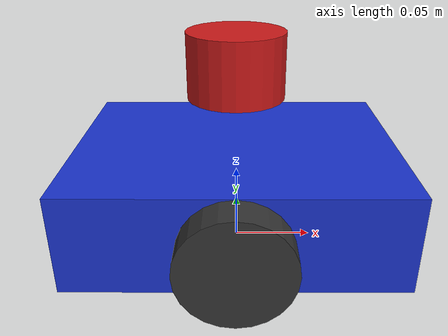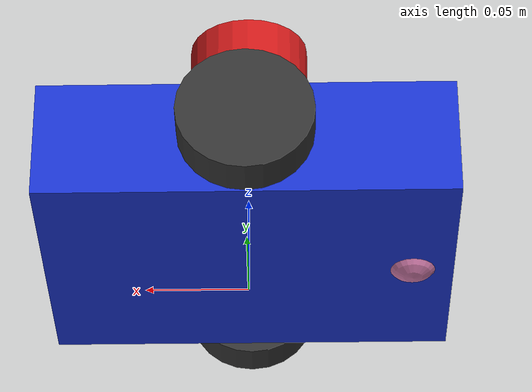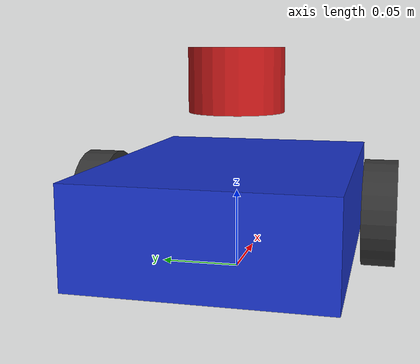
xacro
<?xml version="1.0"?>
<robot name="amr" xmlns:xacro="http://www.ros.org/wiki/xacro">

  <xacro:include filename="$(find amr_description)/urdf/wheel.xacro"/>
  <xacro:include filename="$(find amr_description)/urdf/sensors.xacro"/>

  <link name="base_footprint"/>

  <link name="base_link">
    <visual>
      <geometry><box size="0.20 0.15 0.06"/></geometry>
      <material name="blue"><color rgba="0.1 0.2 0.8 1"/></material>
    </visual>
    <collision>
      <geometry><box size="0.20 0.15 0.06"/></geometry>
    </collision>
    <inertial>
      <mass value="0.6"/>
      <inertia ixx="0.001" ixy="0" ixz="0" iyy="0.002" iyz="0" izz="0.002"/>
    </inertial>
  </link>

  <joint name="base_footprint_joint" type="fixed">
    <parent link="base_footprint"/>
    <child link="base_link"/>
    <origin xyz="0 0 0.04" rpy="0 0 0"/>
  </joint>

  <xacro:wheel prefix="left"  x_pos="0" y_pos="0.09"/>
  <xacro:wheel prefix="right" x_pos="0" y_pos="-0.09"/>

  <link name="caster_wheel">
    <visual><geometry><sphere radius="0.015"/></geometry></visual>
    <collision><geometry><sphere radius="0.015"/></geometry></collision>
    <inertial>
      <mass value="0.02"/>
      <inertia ixx="0.000005" ixy="0" ixz="0" iyy="0.000005" iyz="0" izz="0.000005"/>
    </inertial>
  </link>

  <joint name="caster_joint" type="fixed">
    <parent link="base_link"/>
    <child link="caster_wheel"/>
    <origin xyz="-0.08 0 -0.02" rpy="0 0 0"/>
  </joint>

  <gazebo>
    <plugin filename="gz-sim-diff-drive-system" name="gz::sim::systems::DiffDrive">
      <left_joint>left_wheel_joint</left_joint>
      <right_joint>right_wheel_joint</right_joint>
      <wheel_separation>0.18</wheel_separation>
      <wheel_radius>0.0325</wheel_radius>
      <odom_publish_frequency>30</odom_publish_frequency>
      <topic>cmd_vel</topic>
      <odom_topic>odom</odom_topic>
      <tf_topic>tf</tf_topic>
      <frame_id>odom</frame_id>
      <child_frame_id>base_footprint</child_frame_id>
    </plugin>
    <plugin filename="gz-sim-joint-state-publisher-system" name="gz::sim::systems::JointStatePublisher"/>
  </gazebo>

</robot>

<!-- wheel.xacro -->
<robot xmlns:xacro="http://www.ros.org/wiki/xacro">
  <xacro:macro name="wheel" params="prefix x_pos y_pos">
    <link name="${prefix}_wheel">
      <visual>
        <origin xyz="0 0 0" rpy="1.5708 0 0"/>
        <geometry><cylinder radius="0.0325" length="0.02"/></geometry>
        <material name="dark_grey"><color rgba="0.2 0.2 0.2 1"/></material>
      </visual>
      <collision>
        <origin xyz="0 0 0" rpy="1.5708 0 0"/>
        <geometry><cylinder radius="0.0325" length="0.02"/></geometry>
      </collision>
      <inertial>
        <mass value="0.05"/>
        <inertia ixx="0.00002" ixy="0" ixz="0" iyy="0.00002" iyz="0" izz="0.00003"/>
      </inertial>
    </link>

    <joint name="${prefix}_wheel_joint" type="continuous">
      <parent link="base_link"/>
      <child link="${prefix}_wheel"/>
      <origin xyz="${x_pos} ${y_pos} 0" rpy="0 0 0"/>
      <axis xyz="0 1 0"/>
    </joint>
  </xacro:macro>
</robot>

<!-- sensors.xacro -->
<robot xmlns:xacro="http://www.ros.org/wiki/xacro">

  <!-- LIDAR (models the YDLidar X2's FOV/range for sim purposes) -->
  <link name="laser_frame">
    <visual>
      <geometry><cylinder radius="0.03" length="0.04"/></geometry>
      <material name="red"><color rgba="0.8 0.1 0.1 1"/></material>
    </visual>
    <collision>
      <geometry><cylinder radius="0.03" length="0.04"/></geometry>
    </collision>
    <inertial>
      <mass value="0.05"/>
      <inertia ixx="0.00001" ixy="0" ixz="0" iyy="0.00001" iyz="0" izz="0.00001"/>
    </inertial>
  </link>

  <joint name="lidar_joint" type="fixed">
    <parent link="base_link"/>
    <child link="laser_frame"/>
    <origin xyz="0 0 0.08" rpy="0 0 0"/>
  </joint>

  <gazebo reference="lidar_joint">
    <preserveFixedJoint>true</preserveFixedJoint>
    <disableFixedJointLumping>true</disableFixedJointLumping>
  </gazebo>

  <gazebo reference="laser_frame">
    <sensor name="lidar" type="gpu_lidar">
      <pose>0 0 0 0 0 0</pose>
      <topic>scan</topic>
      <update_rate>7</update_rate>
      <lidar>
        <scan>
          <horizontal>
            <samples>360</samples>
            <resolution>1</resolution>
            <min_angle>-3.14159</min_angle>
            <max_angle>3.14159</max_angle>
          </horizontal>
        </scan>
        <range>
          <min>0.12</min>
          <max>8.0</max>
          <resolution>0.01</resolution>
        </range>
      </lidar>
      <always_on>true</always_on>
      <visualize>true</visualize>
    </sensor>
  </gazebo>

  <!-- MPU6050 IMU -->
  <link name="imu_link">
    <inertial>
      <mass value="0.01"/>
      <inertia ixx="0.000001" ixy="0" ixz="0" iyy="0.000001" iyz="0" izz="0.000001"/>
    </inertial>
  </link>

  <joint name="imu_joint" type="fixed">
    <parent link="base_link"/>
    <child link="imu_link"/>
    <origin xyz="0 0 0.02" rpy="0 0 0"/>
  </joint>

  <gazebo reference="imu_joint">
    <preserveFixedJoint>true</preserveFixedJoint>
    <disableFixedJointLumping>true</disableFixedJointLumping>
  </gazebo>

  <gazebo reference="imu_link">
    <sensor name="imu_sensor" type="imu">
      <topic>imu/data_raw</topic>
      <update_rate>50</update_rate>
      <always_on>true</always_on>
    </sensor>
  </gazebo>

</robot>
